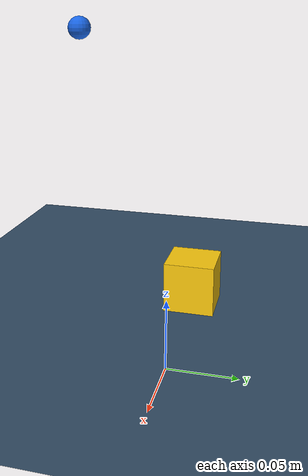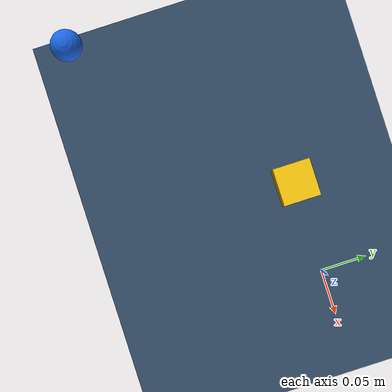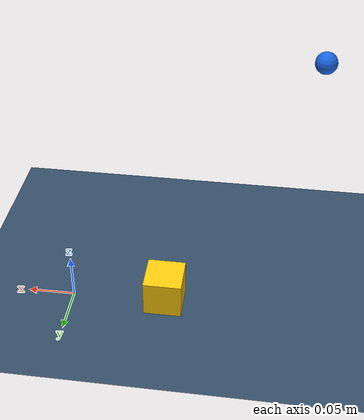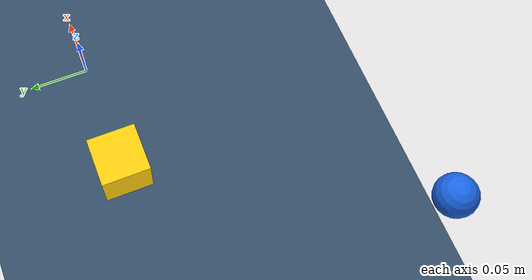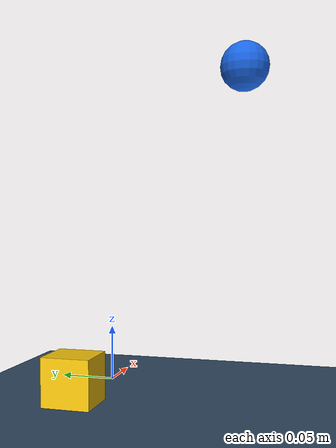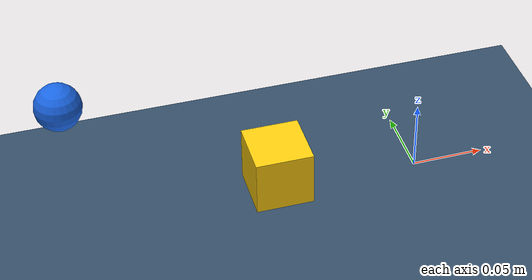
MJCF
<mujoco model="engineering_reference_pick_place">
  <option timestep="0.005" gravity="0 0 -9.81"/>
  <default><geom friction="0.8 0.05 0.01" solref="0.01 1"/></default>
  <worldbody>
    <geom name="table" type="plane" size="1 1 .1" rgba=".2 .3 .4 1"/>
    <body name="gripper" mocap="true" pos="-.25 -.15 .22">
      <geom name="tip" type="sphere" size=".012" contype="0" conaffinity="0" rgba=".1 .4 .9 1"/>
    </body>
    <body name="part" pos="-.1 0 .022">
      <freejoint name="part_joint"/>
      <geom name="part_geom" type="box" size=".02 .02 .02" mass=".04" rgba="1 .8 .05 1"/>
    </body>
  </worldbody>
  <equality><weld name="grasp_constraint" body1="gripper" body2="part" active="false" relpose="0 0 0 1 0 0 0" solref=".005 1"/></equality>
</mujoco>
